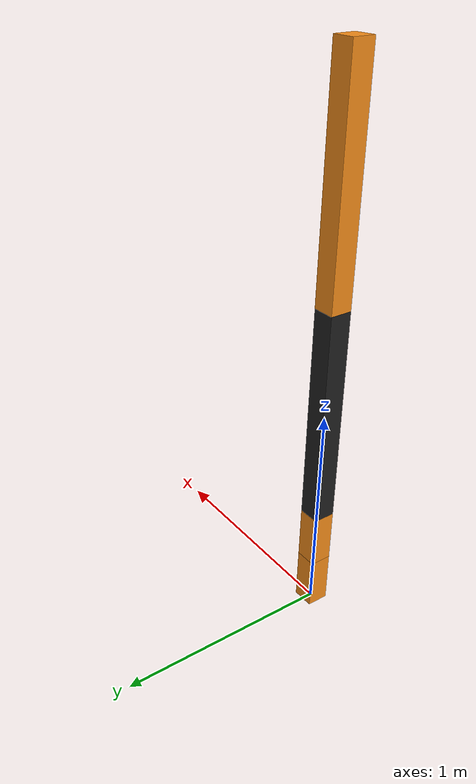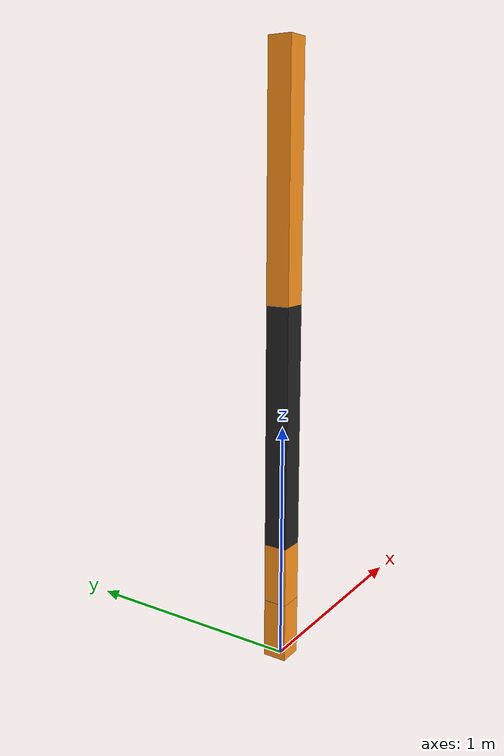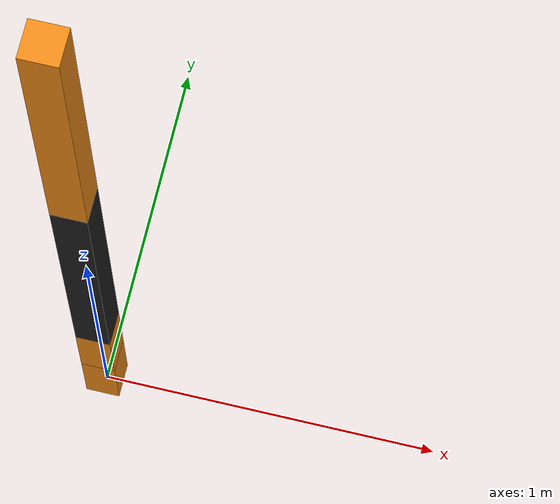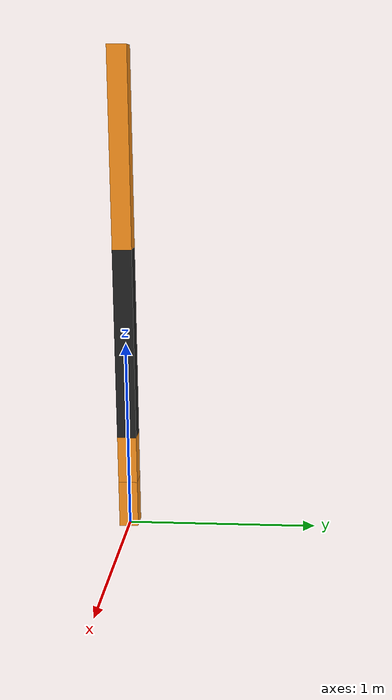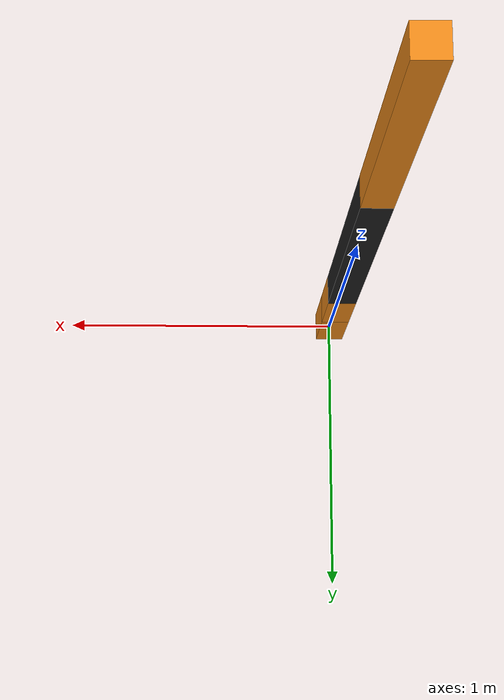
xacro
<?xml version="1.0"?>
<!-- Revolute-Revolute Manipulator -->
<robot name="rrbot" xmlns:xacro="http://www.ros.org/wiki/xacro">

  <!-- Constants for robot dimensions -->
  <xacro:property name="PI" value="3.1415926535897931"/>
  <xacro:property name="mass" value="1" /> <!-- arbitrary value for mass -->
  <xacro:property name="width" value="0.1" /> <!-- Square dimensions (widthxwidth) of beams -->
  <xacro:property name="height1" value="0.25" /> <!-- Link 1 -->
  <xacro:property name="height2" value="1" /> <!-- Link 2 -->
  <xacro:property name="height3" value="1" /> <!-- Link 3 -->
  <xacro:property name="camera_link" value="0.05" /> <!-- Size of square 'camera' box -->
  <xacro:property name="axel_offset" value="0.05" /> <!-- Space btw top of beam and the each joint -->

  <!-- Import all Gazebo-customization elements, including Gazebo colors -->
  <xacro:include filename="$(find rrbot_description)/urdf/rrbot.gazebo" />
  <!-- Import Rviz colors -->
  <xacro:include filename="$(find rrbot_description)/urdf/materials.xacro" />

  <!-- Used for fixing robot to Gazebo 'base_link' -->
  <link name="world"/>

  <joint name="fixed" type="fixed">
    <parent link="world"/>
    <child link="link0"/>
  </joint>

  <!-- Base Link -->

  <link name="link0">
    <collision>
      <origin xyz="0 0 ${height1/2}" rpy="0 0 0"/>
      <geometry>
	      <box size="${width} ${width} ${height1}"/>
      </geometry>
    </collision>

    <visual>
      <origin xyz="0 0 ${height1/2}" rpy="0 0 0"/>
      <geometry>
        <box size="${width} ${width} ${height1}"/>
      </geometry>
      <material name="orange"/>
    </visual>

    <inertial>
      <origin xyz="0 0 ${height1/2}" rpy="0 0 0"/>
      <mass value="${mass}"/>
      <inertia
        ixx="${mass / 12.0 * (width*width + height1*height1)}" ixy="0.0" ixz="0.0"
        iyy="${mass / 12.0 * (height1*height1 + width*width)}" iyz="0.0"
        izz="${mass / 12.0 * (width*width + width*width)}"/>
    </inertial>
  </link>

  <joint name="joint1" type="continuous">
    <parent link="link0"/>
    <child link="link1"/>
    <origin xyz="0 0 ${height1}" rpy="0 0 0"/>
    <axis xyz="0 0 1"/>
    <dynamics damping="0.7"/>
  </joint>

  <link name="link1">
    <collision>
      <origin xyz="0 0 ${height1/2}" rpy="0 0 0"/>
      <geometry>
	      <box size="${width} ${width} ${height1}"/>
      </geometry>
    </collision>

    <visual>
      <origin xyz="0 0 ${height1/2}" rpy="0 0 0"/>
      <geometry>
	      <box size="${width} ${width} ${height1}"/>
      </geometry>
      <material name="orange"/>
    </visual>

    <inertial>
      <origin xyz="0 0 ${height1/2}" rpy="0 0 0"/>
      <mass value="${mass}"/>
      <inertia
	  ixx="${mass / 12.0 * (width*width + height1*height1)}" ixy="0.0" ixz="0.0"
	  iyy="${mass / 12.0 * (height1*height1 + width*width)}" iyz="0.0"
	  izz="${mass / 12.0 * (width*width + width*width)}"/>
    </inertial>
  </link>

  <joint name="joint2" type="continuous">
    <parent link="link1"/>
    <child link="link2"/>
    <origin xyz="0 0 ${height1}" rpy="0 0 0"/>
    <axis xyz="0 -1 0"/>
    <dynamics damping="0.7"/>
  </joint>

  <!-- Middle Link -->
  <link name="link2">
    <collision>
      <origin xyz="0 0 ${height2/2}" rpy="0 0 0"/>
      <geometry>
	<box size="${width} ${width} ${height2}"/>
      </geometry>
    </collision>

    <visual>
      <origin xyz="0 0 ${height2/2}" rpy="0 0 0"/>
      <geometry>
	<box size="${width} ${width} ${height2}"/>
      </geometry>
      <material name="black"/>
    </visual>

    <inertial>
      <origin xyz="0 0 ${height2/2}" rpy="0 0 0"/>
      <mass value="${mass}"/>
      <inertia
	  ixx="${mass / 12.0 * (width*width + height2*height2)}" ixy="0.0" ixz="0.0"
	  iyy="${mass / 12.0 * (height2*height2 + width*width)}" iyz="0.0"
	  izz="${mass / 12.0 * (width*width + width*width)}"/>
    </inertial>
  </link>

  <joint name="joint3" type="continuous">
    <parent link="link2"/>
    <child link="link3"/>
    <origin xyz="0 0 ${height2}" rpy="0 0 0"/>
    <axis xyz="0 -1 0"/>
    <dynamics damping="0.7"/>
  </joint>

  <!-- Top Link -->
  <link name="link3">
    <collision>
      <origin xyz="0 0 ${height3/2}" rpy="0 0 0"/>
      <geometry>
	<box size="${width} ${width} ${height3}"/>
      </geometry>
    </collision>

    <visual>
      <origin xyz="0 0 ${height3/2}" rpy="0 0 0"/>
      <geometry>
	<box size="${width} ${width} ${height3}"/>
      </geometry>
      <material name="orange"/>
    </visual>

    <inertial>
      <origin xyz="0 0 ${height3/2}" rpy="0 0 0"/>
      <mass value="${mass}"/>
      <inertia
	  ixx="${mass / 12.0 * (width*width + height3*height3)}" ixy="0.0" ixz="0.0"
	  iyy="${mass / 12.0 * (height3*height3 + width*width)}" iyz="0.0"
	  izz="${mass / 12.0 * (width*width + width*width)}"/>
    </inertial>
  </link>

  <joint name="end_effector_fixed" type="fixed">
    <parent link="link3"/>
    <child link="end_effector"/>
    <origin xyz="0 0 ${height2}" rpy="0 0 0"/>
  </joint>

  <link name="end_effector">
    <collision>
      <origin xyz="0 0 0" rpy="0 0 0"/>
      <geometry>
	      <box size="0 0 0"/>
      </geometry>
    </collision>

    <visual>
      <origin xyz="0 0 0" rpy="0 0 0"/>
      <geometry>
	      <box size="0 0 0"/>
      </geometry>
      <material name="orange"/>
    </visual>

    <inertial>
      <origin xyz="0 0 0" rpy="0 0 0"/>
      <mass value="0"/>
      <inertia
	  ixx="0" ixy="0.0" ixz="0.0"
	  iyy="0" iyz="0.0"
	  izz="0"/>
    </inertial>
  </link>

  <transmission name="tran1">
    <type>transmission_interface/SimpleTransmission</type>
    <joint name="joint1">
      <hardwareInterface>hardware_interface/EffortJointInterface</hardwareInterface>
    </joint>
    <actuator name="motor1">
      <hardwareInterface>hardware_interface/EffortJointInterface</hardwareInterface>
      <mechanicalReduction>1</mechanicalReduction>
    </actuator>
  </transmission>

  <transmission name="tran2">
    <type>transmission_interface/SimpleTransmission</type>
    <joint name="joint2">
      <hardwareInterface>hardware_interface/EffortJointInterface</hardwareInterface>
    </joint>
    <actuator name="motor2">
      <hardwareInterface>hardware_interface/EffortJointInterface</hardwareInterface>
      <mechanicalReduction>1</mechanicalReduction>
    </actuator>
  </transmission>

  <transmission name="tran3">
    <type>transmission_interface/SimpleTransmission</type>
    <joint name="joint3">
      <hardwareInterface>hardware_interface/EffortJointInterface</hardwareInterface>
    </joint>
    <actuator name="motor3">
      <hardwareInterface>hardware_interface/EffortJointInterface</hardwareInterface>
      <mechanicalReduction>1</mechanicalReduction>
    </actuator>
  </transmission>

</robot>
